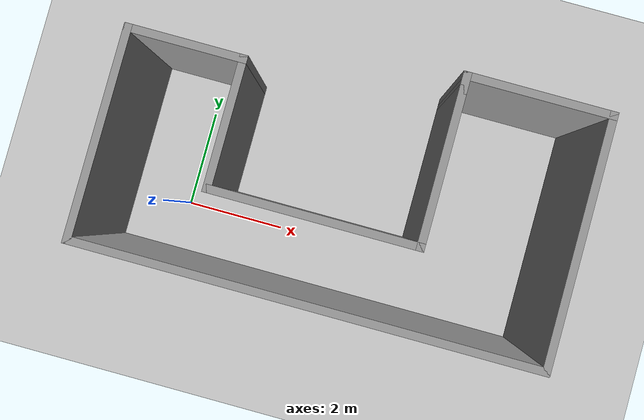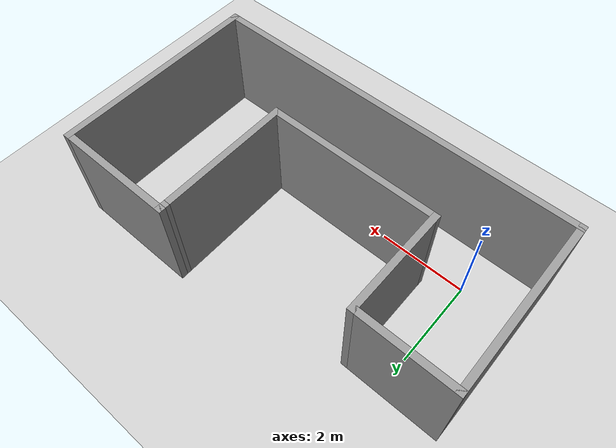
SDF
<sdf version="1.6">
 <world name="default">
  <light name="sun" type="directional">
   <pose>0 0 10 0 -0 0</pose>
   <diffuse>0.8 0.8 0.8 1</diffuse>
   <specular>0.2 0.2 0.2 1</specular>
   <attenuation>
    <range>1000</range>
    <constant>0.9</constant>
    <linear>0.01</linear>
    <quadratic>0.001</quadratic>
   </attenuation>
   <direction>-0.5 0.1 -0.9</direction>
  </light>
  <model name="ground_plane">
   <static>1</static>
   <link name="link">
    <collision name="collision">
     <geometry><plane><normal>0 0 1</normal><size>100 100</size></plane></geometry>
     <surface>
      <contact><collide_bitmask>65535</collide_bitmask></contact>
      <friction><ode><mu>100</mu><mu2>50</mu2></ode></friction>
     </surface>
    </collision>
    <visual name="visual">
     <cast_shadows>0</cast_shadows>
     <geometry><plane><normal>0 0 1</normal><size>100 100</size></plane></geometry>
     <material>
      <script><uri>file://media/materials/scripts/gazebo.material</uri><name>Gazebo/Grey</name></script>
     </material>
    </visual>
   </link>
  </model>
  <gravity>0 0 -9.8</gravity>
  <magnetic_field>6e-06 2.3e-05 -4.2e-05</magnetic_field>
  <atmosphere type="adiabatic"/>
  <physics name="default_physics" default="0" type="ode">
   <max_step_size>0.001</max_step_size>
   <real_time_factor>1</real_time_factor>
   <real_time_update_rate>1000</real_time_update_rate>
  </physics>
  <scene><ambient>0.4 0.4 0.4 1</ambient><background>0.7 0.7 0.7 1</background><shadows>1</shadows></scene>
  <spherical_coordinates>
   <surface_model>EARTH_WGS84</surface_model>
   <latitude_deg>0</latitude_deg>
   <longitude_deg>0</longitude_deg>
   <elevation>0</elevation>
   <heading_deg>0</heading_deg>
  </spherical_coordinates>
  <model name="final_home">
   <pose>3.02257 1.2293 0 0 -0 0</pose>
   <link name="Wall_0">
    <collision name="Wall_0_Collision">
     <geometry><box><size>4 0.15 2.5</size></box></geometry>
     <pose>0 0 1.25 0 -0 0</pose>
    </collision>
    <visual name="Wall_0_Visual">
     <pose>0 0 1.25 0 -0 0</pose>
     <geometry><box><size>4 0.15 2.5</size></box></geometry>
     <material>
      <script><uri>file://media/materials/scripts/gazebo.material</uri><name>Gazebo/Grey</name></script>
      <ambient>1 1 1 1</ambient>
     </material>
     <meta><layer>0</layer></meta>
    </visual>
    <pose>-0.275 -0.8 0 0 -0 0</pose>
   </link>
   <link name="Wall_12">
    <collision name="Wall_12_Collision">
     <geometry><box><size>4 0.15 2.5</size></box></geometry>
     <pose>0 0 1.25 0 -0 0</pose>
    </collision>
    <visual name="Wall_12_Visual">
     <pose>0 0 1.25 0 -0 0</pose>
     <geometry><box><size>4 0.15 2.5</size></box></geometry>
     <material>
      <script><uri>file://media/materials/scripts/gazebo.material</uri><name>Gazebo/Grey</name></script>
      <ambient>1 1 1 1</ambient>
     </material>
     <meta><layer>0</layer></meta>
    </visual>
    <pose>-4.3 -0.375 0 0 0 -1.5708</pose>
   </link>
   <link name="Wall_14">
    <collision name="Wall_14_Collision">
     <geometry><box><size>8.75 0.15 2.5</size></box></geometry>
     <pose>0 0 1.25 0 -0 0</pose>
    </collision>
    <visual name="Wall_14_Visual">
     <pose>0 0 1.25 0 -0 0</pose>
     <geometry><box><size>8.75 0.15 2.5</size></box></geometry>
     <material>
      <script><uri>file://media/materials/scripts/gazebo.material</uri><name>Gazebo/Grey</name></script>
      <ambient>1 1 1 1</ambient>
     </material>
     <meta><layer>0</layer></meta>
    </visual>
    <pose>0 -2.3 0 0 -0 0</pose>
   </link>
   <link name="Wall_15">
    <collision name="Wall_15_Collision">
     <geometry><box><size>4.75 0.15 2.5</size></box></geometry>
     <pose>0 0 1.25 0 -0 0</pose>
    </collision>
    <visual name="Wall_15_Visual">
     <pose>0 0 1.25 0 -0 0</pose>
     <geometry><box><size>4.75 0.15 2.5</size></box></geometry>
     <material>
      <script><uri>file://media/materials/scripts/gazebo.material</uri><name>Gazebo/Grey</name></script>
      <ambient>1 1 1 1</ambient>
     </material>
     <meta><layer>0</layer></meta>
    </visual>
    <pose>4.3 0 0 0 -0 1.5708</pose>
   </link>
   <link name="Wall_16">
    <collision name="Wall_16_Collision">
     <geometry><box><size>2.8 0.15 2.5</size></box></geometry>
     <pose>0 0 1.25 0 -0 0</pose>
    </collision>
    <visual name="Wall_16_Visual">
     <pose>0 0 1.25 0 -0 0</pose>
     <geometry><box><size>2.8 0.15 2.5</size></box></geometry>
     <material>
      <script><uri>file://media/materials/scripts/gazebo.material</uri><name>Gazebo/Grey</name></script>
      <ambient>1 1 1 1</ambient>
     </material>
     <meta><layer>0</layer></meta>
    </visual>
    <pose>2.975 2.3 0 0 -0 3.14159</pose>
   </link>
   <link name="Wall_19">
    <collision name="Wall_19_Collision">
     <geometry><box><size>3 0.15 2.5</size></box></geometry>
     <pose>0 0 1.25 0 -0 0</pose>
    </collision>
    <visual name="Wall_19_Visual">
     <pose>0 0 1.25 0 -0 0</pose>
     <geometry><box><size>3 0.15 2.5</size></box></geometry>
     <material>
      <script><uri>file://media/materials/scripts/gazebo.material</uri><name>Gazebo/Grey</name></script>
      <ambient>1 1 1 1</ambient>
     </material>
     <meta><layer>0</layer></meta>
    </visual>
    <pose>1.65 0.625 0 0 -0 1.5708</pose>
   </link>
   <link name="Wall_21">
    <collision name="Wall_21_Collision">
     <geometry><box><size>0.4 0.15 2.5</size></box></geometry>
     <pose>0 0 1.25 0 -0 0</pose>
    </collision>
    <visual name="Wall_21_Visual">
     <pose>0 0 1.25 0 -0 0</pose>
     <geometry><box><size>0.4 0.15 2.5</size></box></geometry>
     <material>
      <script><uri>file://media/materials/scripts/gazebo.material</uri><name>Gazebo/Grey</name></script>
      <ambient>1 1 1 1</ambient>
     </material>
     <meta><layer>0</layer></meta>
    </visual>
    <pose>1.65 2.175 0 0 0 -1.5708</pose>
   </link>
   <link name="Wall_6">
    <collision name="Wall_6_Collision">
     <geometry><box><size>2.5 0.15 2.5</size></box></geometry>
     <pose>0 0 1.25 0 -0 0</pose>
    </collision>
    <visual name="Wall_6_Visual">
     <pose>0 0 1.25 0 -0 0</pose>
     <geometry><box><size>2.5 0.15 2.5</size></box></geometry>
     <material>
      <script><uri>file://media/materials/scripts/gazebo.material</uri><name>Gazebo/Grey</name></script>
      <ambient>1 1 1 1</ambient>
     </material>
     <meta><layer>0</layer></meta>
    </visual>
    <pose>-2.2 0.375 0 0 -0 1.5708</pose>
   </link>
   <link name="Wall_7">
    <collision name="Wall_7_Collision">
     <geometry><box><size>2.25 0.15 2.5</size></box></geometry>
     <pose>0 0 1.25 0 -0 0</pose>
    </collision>
    <visual name="Wall_7_Visual">
     <pose>0 0 1.25 0 -0 0</pose>
     <geometry><box><size>2.25 0.15 2.5</size></box></geometry>
     <material>
      <script><uri>file://media/materials/scripts/gazebo.material</uri><name>Gazebo/Grey</name></script>
      <ambient>1 1 1 1</ambient>
     </material>
     <meta><layer>0</layer></meta>
    </visual>
    <pose>-3.25 1.55 0 0 -0 3.14159</pose>
   </link>
   <static>1</static>
  </model>
 </world>
</sdf>
